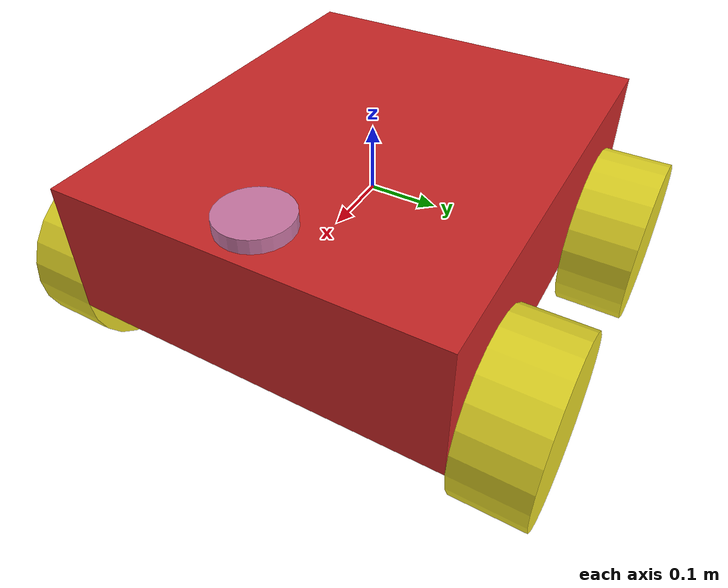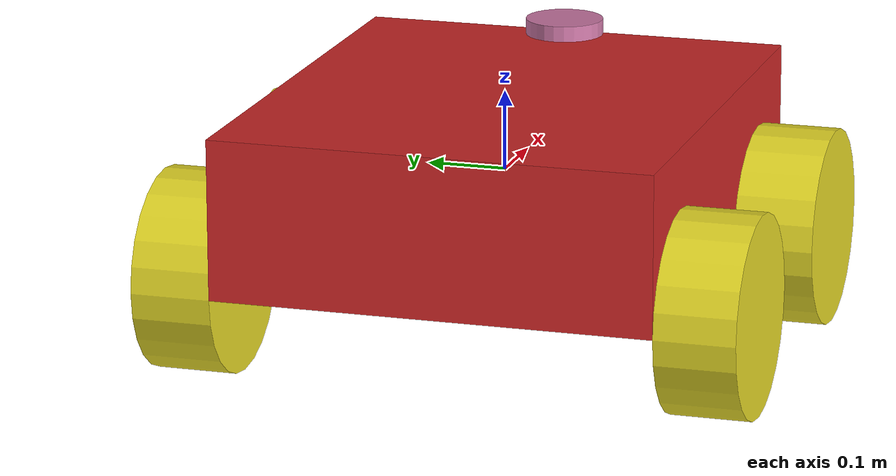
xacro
<?xml version="1.0"?>
<robot xmlns:xacro="http://ros.org/wiki/xacro" name="four_wheel_diffbot">

  <!-- 基本尺寸，對應 footprint 0.65 × 0.55 -->
  <xacro:property name="body_link_x_dim" value="0.65"/>
  <xacro:property name="body_link_y_dim"  value="0.55"/>
  <xacro:property name="body_link_z_dim" value="0.20"/>

  <!-- Wheel dimensions -->
  <xacro:property name="wheel_link_radius" value="0.125" />
  <xacro:property name="wheel_link_length" value="0.1" />
  <xacro:property name="wheel_link_z_location" value="-0.1" />

  <!-- Material denstiy -->
  <xacro:property name="body_density" value="2710.0" />
  <xacro:property name="wheel_density" value="2710.0" />

  <!-- Pi constant -->
  <xacro:property name="pi_const" value="3.14159265" />

  <!-- Robot body and wheel mass -->
  <xacro:property name="body_mass" value="${body_density*body_link_x_dim*body_link_y_dim*body_link_z_dim}" />
  <xacro:property name="wheel_mass" value="${wheel_density*pi_const*wheel_link_radius*wheel_link_radius*wheel_link_length}" />

  <!-- Moments of inertia of the wheel -->
  <xacro:property name="Iz_wheel" value="${0.5*wheel_mass*wheel_link_radius*wheel_link_radius}" />
  <xacro:property name="I_wheel" value="${(1.0/12.0)*wheel_mass*(3.0*wheel_link_radius*wheel_link_radius+wheel_link_length*wheel_link_length)}" />

  <!-- This macro defines the complete inertial section of the wheel -->
  <!-- It is used later ub the code -->
  <xacro:macro name="inertia_wheel">
    <inertial>
      <origin rpy="0 0 0" xyz="0 0 0" />
      <mass value="${wheel_mass}" />
      <inertia ixx="${I_wheel}" ixy="0.0" ixz="0.0" iyy="${I_wheel}" iyz="0.0" izz="${Iz_wheel}" />
    </inertial>
  </xacro:macro>

  <!-- Over here we include the file that defines extra Gazebo options and motion control drive -->
  <xacro:include filename="$(find diffdrive_gazebo)/urdf/robot.gazebo" />

  <!-- FROM HERE WE DEFINE LINKS, JOINTS                           -->

  <!-- We need to have this dummy link otherwise Gazebo will complain -->
  <link name="base_link" />
  <joint name="base_link_joint" type="fixed">
    <parent link="base_link" />
    <child link="body_link" />
  </joint>

  <!-- START: Body link of the robot                               -->
  <link name="body_link">
    <visual>
      <origin rpy="0 0 0" xyz="0 0 0" />
      <geometry>
        <box size="${body_link_x_dim} ${body_link_y_dim} ${body_link_z_dim}" />
      </geometry>
    </visual>

    <collision>
      <origin rpy="0 0 0" xyz="0 0 0" />
      <geometry>
        <box size="${body_link_x_dim} ${body_link_y_dim} ${body_link_z_dim}" />
      </geometry>
    </collision>

    <inertial>
      <origin rpy="0 0 0" xyz="0 0 0" />
      <mass value="${body_mass}" />
      <inertia
      ixx="${(1/12)*body_mass*(body_link_y_dim*body_link_y_dim+body_link_z_dim*body_link_z_dim)}" ixy="0" ixz="0"
      iyy="${(1/12)*body_mass*(body_link_x_dim*body_link_x_dim+body_link_z_dim*body_link_z_dim)}" iyz="0"
      izz="${(1/12)*body_mass*(body_link_y_dim*body_link_y_dim+body_link_x_dim*body_link_x_dim)}" />
    </inertial>
  </link>

  <!-- END: Body link of the robot                                 -->

  <!-- START: Back right wheel of the robot and the joint          -->

  <joint name="wheel1_joint" type="continuous">
    <parent link="body_link"/>
    <child  link="wheel1_link"/>
    <origin xyz="${-body_link_x_dim/2+1.0*wheel_link_radius} ${-body_link_y_dim/2-wheel_link_length/2} ${wheel_link_z_location}" rpy="0 0 0"/>
    <axis  xyz="0 1 0"/>
    <limit effort="1000" velocity="1000" />
    <dynamics damping="1.0" friction="1.0" />
  </joint>

  <link name="wheel1_link">
    <visual>
      <origin rpy="1.570795 0 0" xyz="0 0 0" />
      <geometry>
        <cylinder length="${wheel_link_length}" radius="${wheel_link_radius}" />
      </geometry>
    </visual>

    <collision>
      <origin rpy="1.570795 0 0" xyz="0 0 0" />
      <geometry>
        <cylinder length="${wheel_link_length}" radius="${wheel_link_radius}" />
      </geometry>
    </collision>

    <xacro:inertia_wheel />
  </link>

  <!-- END: Back right wheel of the robot and the joint            -->

  <!-- START: Back left wheel of the robot and the joint           -->

  <joint name="wheel2_joint" type="continuous">
    <parent link="body_link"/>
    <child  link="wheel2_link"/>
    <origin xyz="${-body_link_x_dim/2+1.0*wheel_link_radius} ${body_link_y_dim/2+wheel_link_length/2} ${wheel_link_z_location}" rpy="0 0 0"/>
    <axis  xyz="0 1 0"/>
    <limit effort="1000" velocity="1000" />
    <dynamics damping="1.0" friction="1.0" />
  </joint>

  <link name="wheel2_link">
    <visual>
      <origin rpy="1.570795 0 0" xyz="0 0 0" />
      <geometry>
        <cylinder length="${wheel_link_length}" radius="${wheel_link_radius}" />
      </geometry>
    </visual>

    <collision>
      <origin rpy="1.570795 0 0" xyz="0 0 0" />
      <geometry>
        <cylinder length="${wheel_link_length}" radius="${wheel_link_radius}" />
      </geometry>
    </collision>

    <xacro:inertia_wheel />
  </link>

  <!-- END: Back left wheel of the robot and the joint             -->

  <!-- START: Front right wheel of the robot and the joint         -->

  <joint name="wheel3_joint" type="continuous">
    <parent link="body_link"/>
    <child  link="wheel3_link"/>
    <origin xyz="${body_link_x_dim/2-1.0*wheel_link_radius} ${-body_link_y_dim/2-wheel_link_length/2} ${wheel_link_z_location}" rpy="0 0 0"/>
    <axis  xyz="0 1 0"/>
    <limit effort="1000" velocity="1000" />
    <dynamics damping="1.0" friction="1.0" />
  </joint>

  <link name="wheel3_link">
    <visual>
      <origin rpy="1.570795 0 0" xyz="0 0 0" />
      <geometry>
        <cylinder length="${wheel_link_length}" radius="${wheel_link_radius}" />
      </geometry>
    </visual>

    <collision>
      <origin rpy="1.570795 0 0" xyz="0 0 0" />
      <geometry>
        <cylinder length="${wheel_link_length}" radius="${wheel_link_radius}" />
      </geometry>
    </collision>

    <xacro:inertia_wheel />
  </link>

  <!-- END: Front right wheel of the robot and the joint           -->

  <!-- START: Front left wheel of the robot and the joint          -->

  <joint name="wheel4_joint" type="continuous">
    <parent link="body_link"/>
    <child  link="wheel4_link"/>
    <origin xyz="${body_link_x_dim/2-1.0*wheel_link_radius} ${body_link_y_dim/2+wheel_link_length/2} ${wheel_link_z_location}" rpy="0 0 0"/>
    <axis  xyz="0 1 0"/>
    <limit effort="1000" velocity="1000" />
    <dynamics damping="1.0" friction="1.0" />
  </joint>

  <link name="wheel4_link">
    <visual>
      <origin rpy="1.570795 0 0" xyz="0 0 0" />
      <geometry>
        <cylinder length="${wheel_link_length}" radius="${wheel_link_radius}" />
      </geometry>
    </visual>

    <collision>
      <origin rpy="1.570795 0 0" xyz="0 0 0" />
      <geometry>
        <cylinder length="${wheel_link_length}" radius="${wheel_link_radius}" />
      </geometry>
    </collision>

    <xacro:inertia_wheel />
  </link>

  <!-- END: Front left wheel of the robot and the joint            -->

  <!-- START: the laser of the robot and the joint                 -->

  <joint name="laser_joint" type="fixed">
    <parent link="body_link"/>
    <origin xyz="0.27 0 0.12" rpy="0 0 0"/>
    <child link="laser_link"/>
  </joint>

  <link name="laser_link">
    <visual>
      <geometry>
        <cylinder length="0.02" radius="0.05" />
      </geometry>
    </visual>
    <collision>
      <geometry>
        <cylinder length="0.02" radius="0.05" />
      </geometry>
    </collision>
  </link>

  <!-- END: the laser of the robot and the joint                   -->

</robot>
